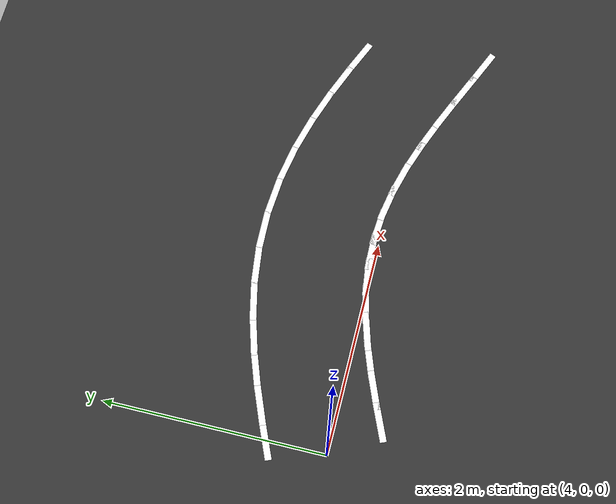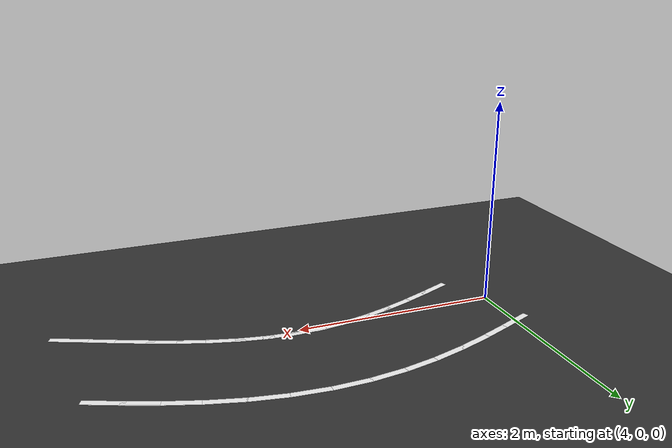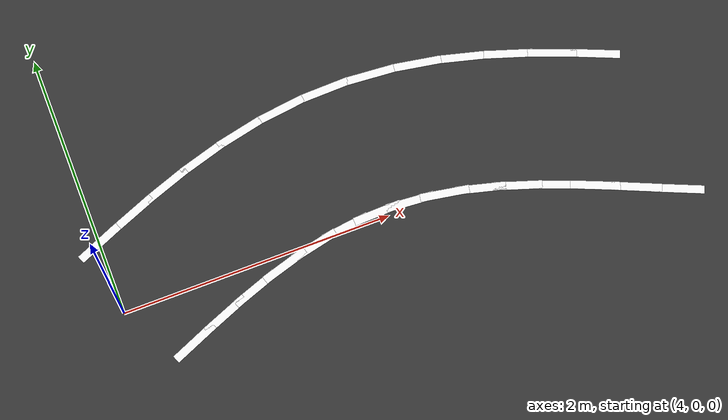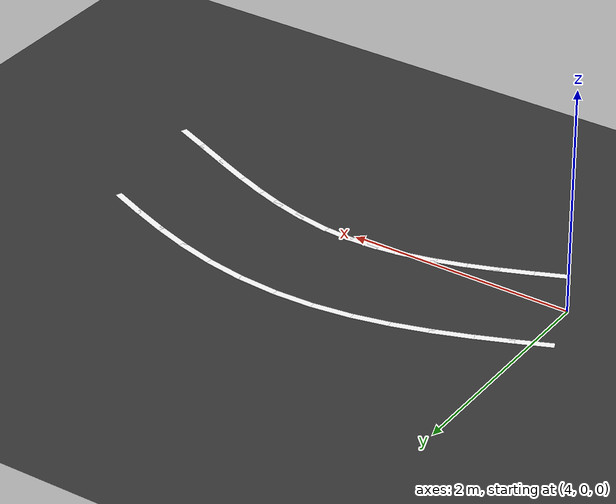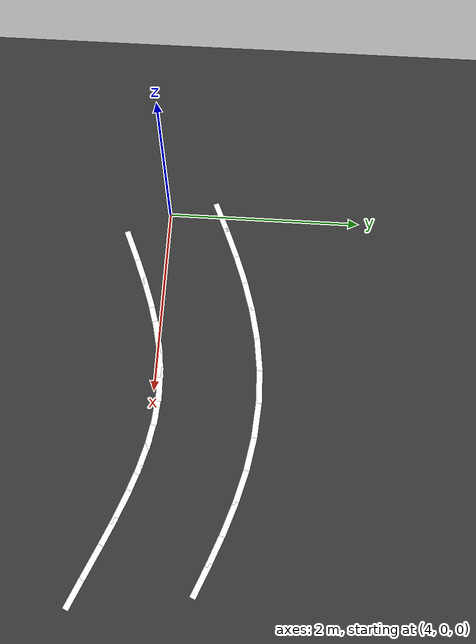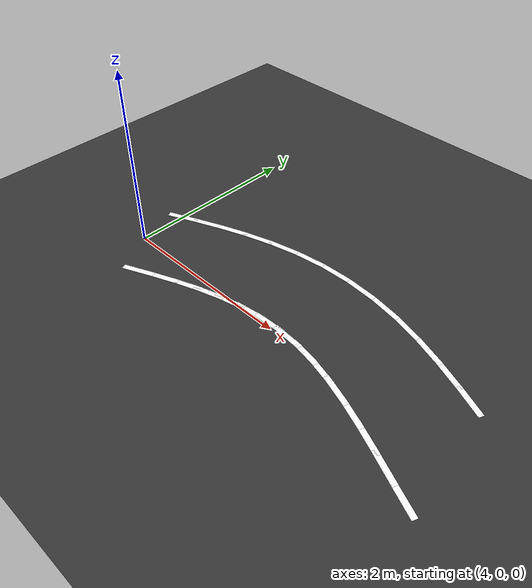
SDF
<sdf version="1.7">
 <world name="cone_lane">
  <model name="ground_plane">
   <static>true</static>
   <link name="link">
    <collision name="collision">
     <geometry><plane><normal>0 0 1</normal><size>150 150</size></plane></geometry>
     <surface><friction><ode><mu>1.0</mu></ode></friction></surface>
    </collision>
    <visual name="visual">
     <geometry><plane><normal>0 0 1</normal><size>100 100</size></plane></geometry>
     <material>
      <ambient>0.16 0.16 0.16 1</ambient>
      <diffuse>0.20 0.20 0.20 1</diffuse>
      <specular>0.02 0.02 0.02 1</specular>
     </material>
    </visual>
   </link>
  </model>
  <model name="line_L015">
   <static>true</static>
   <pose>4.004 0.546 0.0030 0 0 0.4033</pose>
   <link name="link">
    <visual name="v">
     <geometry><box><size>0.360 0.060 0.005</size></box></geometry>
     <material>
      <ambient>0.85 0.85 0.85 1</ambient>
      <diffuse>0.95 0.95 0.95 1</diffuse>
      <specular>0.1 0.1 0.1 1</specular>
     </material>
    </visual>
   </link>
  </model>
  <model name="line_L016">
   <static>true</static>
   <pose>4.294 0.666 0.0030 0 0 0.3819</pose>
   <link name="link">
    <visual name="v">
     <geometry><box><size>0.360 0.060 0.005</size></box></geometry>
     <material>
      <ambient>0.85 0.85 0.85 1</ambient>
      <diffuse>0.95 0.95 0.95 1</diffuse>
      <specular>0.1 0.1 0.1 1</specular>
     </material>
    </visual>
   </link>
  </model>
  <model name="line_L017">
   <static>true</static>
   <pose>4.592 0.780 0.0030 0 0 0.3431</pose>
   <link name="link">
    <visual name="v">
     <geometry><box><size>0.360 0.060 0.005</size></box></geometry>
     <material>
      <ambient>0.85 0.85 0.85 1</ambient>
      <diffuse>0.95 0.95 0.95 1</diffuse>
      <specular>0.1 0.1 0.1 1</specular>
     </material>
    </visual>
   </link>
  </model>
  <model name="line_L018">
   <static>true</static>
   <pose>4.898 0.880 0.0030 0 0 0.2875</pose>
   <link name="link">
    <visual name="v">
     <geometry><box><size>0.360 0.060 0.005</size></box></geometry>
     <material>
      <ambient>0.85 0.85 0.85 1</ambient>
      <diffuse>0.95 0.95 0.95 1</diffuse>
      <specular>0.1 0.1 0.1 1</specular>
     </material>
    </visual>
   </link>
  </model>
  <model name="line_L019">
   <static>true</static>
   <pose>5.213 0.962 0.0030 0 0 0.2164</pose>
   <link name="link">
    <visual name="v">
     <geometry><box><size>0.360 0.060 0.005</size></box></geometry>
     <material>
      <ambient>0.85 0.85 0.85 1</ambient>
      <diffuse>0.95 0.95 0.95 1</diffuse>
      <specular>0.1 0.1 0.1 1</specular>
     </material>
    </visual>
   </link>
  </model>
  <model name="line_L020">
   <static>true</static>
   <pose>5.557 1.022 0.0030 0 0 0.1263</pose>
   <link name="link">
    <visual name="v">
     <geometry><box><size>0.360 0.060 0.005</size></box></geometry>
     <material>
      <ambient>0.85 0.85 0.85 1</ambient>
      <diffuse>0.95 0.95 0.95 1</diffuse>
      <specular>0.1 0.1 0.1 1</specular>
     </material>
    </visual>
   </link>
  </model>
  <model name="line_L021">
   <static>true</static>
   <pose>5.906 1.049 0.0030 0 0 0.0271</pose>
   <link name="link">
    <visual name="v">
     <geometry><box><size>0.360 0.060 0.005</size></box></geometry>
     <material>
      <ambient>0.85 0.85 0.85 1</ambient>
      <diffuse>0.95 0.95 0.95 1</diffuse>
      <specular>0.1 0.1 0.1 1</specular>
     </material>
    </visual>
   </link>
  </model>
  <model name="line_L022">
   <static>true</static>
   <pose>6.257 1.040 0.0030 0 0 -0.0741</pose>
   <link name="link">
    <visual name="v">
     <geometry><box><size>0.360 0.060 0.005</size></box></geometry>
     <material>
      <ambient>0.85 0.85 0.85 1</ambient>
      <diffuse>0.95 0.95 0.95 1</diffuse>
      <specular>0.1 0.1 0.1 1</specular>
     </material>
    </visual>
   </link>
  </model>
  <model name="line_L023">
   <static>true</static>
   <pose>6.605 0.998 0.0030 0 0 -0.1699</pose>
   <link name="link">
    <visual name="v">
     <geometry><box><size>0.360 0.060 0.005</size></box></geometry>
     <material>
      <ambient>0.85 0.85 0.85 1</ambient>
      <diffuse>0.95 0.95 0.95 1</diffuse>
      <specular>0.1 0.1 0.1 1</specular>
     </material>
    </visual>
   </link>
  </model>
  <model name="line_L024">
   <static>true</static>
   <pose>6.946 0.924 0.0030 0 0 -0.2538</pose>
   <link name="link">
    <visual name="v">
     <geometry><box><size>0.360 0.060 0.005</size></box></geometry>
     <material>
      <ambient>0.85 0.85 0.85 1</ambient>
      <diffuse>0.95 0.95 0.95 1</diffuse>
      <specular>0.1 0.1 0.1 1</specular>
     </material>
    </visual>
   </link>
  </model>
  <model name="line_L025">
   <static>true</static>
   <pose>7.256 0.832 0.0030 0 0 -0.3174</pose>
   <link name="link">
    <visual name="v">
     <geometry><box><size>0.360 0.060 0.005</size></box></geometry>
     <material>
      <ambient>0.85 0.85 0.85 1</ambient>
      <diffuse>0.95 0.95 0.95 1</diffuse>
      <specular>0.1 0.1 0.1 1</specular>
     </material>
    </visual>
   </link>
  </model>
  <model name="line_L026">
   <static>true</static>
   <pose>7.558 0.724 0.0030 0 0 -0.3647</pose>
   <link name="link">
    <visual name="v">
     <geometry><box><size>0.360 0.060 0.005</size></box></geometry>
     <material>
      <ambient>0.85 0.85 0.85 1</ambient>
      <diffuse>0.95 0.95 0.95 1</diffuse>
      <specular>0.1 0.1 0.1 1</specular>
     </material>
    </visual>
   </link>
  </model>
  <model name="line_L027">
   <static>true</static>
   <pose>7.852 0.607 0.0030 0 0 -0.3948</pose>
   <link name="link">
    <visual name="v">
     <geometry><box><size>0.360 0.060 0.005</size></box></geometry>
     <material>
      <ambient>0.85 0.85 0.85 1</ambient>
      <diffuse>0.95 0.95 0.95 1</diffuse>
      <specular>0.1 0.1 0.1 1</specular>
     </material>
    </visual>
   </link>
  </model>
  <model name="line_R015">
   <static>true</static>
   <pose>4.396 -0.374 0.0030 0 0 0.4033</pose>
   <link name="link">
    <visual name="v">
     <geometry><box><size>0.360 0.060 0.005</size></box></geometry>
     <material>
      <ambient>0.85 0.85 0.85 1</ambient>
      <diffuse>0.95 0.95 0.95 1</diffuse>
      <specular>0.1 0.1 0.1 1</specular>
     </material>
    </visual>
   </link>
  </model>
  <model name="line_R016">
   <static>true</static>
   <pose>4.666 -0.262 0.0030 0 0 0.3819</pose>
   <link name="link">
    <visual name="v">
     <geometry><box><size>0.360 0.060 0.005</size></box></geometry>
     <material>
      <ambient>0.85 0.85 0.85 1</ambient>
      <diffuse>0.95 0.95 0.95 1</diffuse>
      <specular>0.1 0.1 0.1 1</specular>
     </material>
    </visual>
   </link>
  </model>
  <model name="line_R017">
   <static>true</static>
   <pose>4.928 -0.162 0.0030 0 0 0.3431</pose>
   <link name="link">
    <visual name="v">
     <geometry><box><size>0.360 0.060 0.005</size></box></geometry>
     <material>
      <ambient>0.85 0.85 0.85 1</ambient>
      <diffuse>0.95 0.95 0.95 1</diffuse>
      <specular>0.1 0.1 0.1 1</specular>
     </material>
    </visual>
   </link>
  </model>
  <model name="line_R018">
   <static>true</static>
   <pose>5.182 -0.079 0.0030 0 0 0.2875</pose>
   <link name="link">
    <visual name="v">
     <geometry><box><size>0.360 0.060 0.005</size></box></geometry>
     <material>
      <ambient>0.85 0.85 0.85 1</ambient>
      <diffuse>0.95 0.95 0.95 1</diffuse>
      <specular>0.1 0.1 0.1 1</specular>
     </material>
    </visual>
   </link>
  </model>
  <model name="line_R019">
   <static>true</static>
   <pose>5.427 -0.015 0.0030 0 0 0.2164</pose>
   <link name="link">
    <visual name="v">
     <geometry><box><size>0.360 0.060 0.005</size></box></geometry>
     <material>
      <ambient>0.85 0.85 0.85 1</ambient>
      <diffuse>0.95 0.95 0.95 1</diffuse>
      <specular>0.1 0.1 0.1 1</specular>
     </material>
    </visual>
   </link>
  </model>
  <model name="line_R020">
   <static>true</static>
   <pose>5.683 0.030 0.0030 0 0 0.1263</pose>
   <link name="link">
    <visual name="v">
     <geometry><box><size>0.360 0.060 0.005</size></box></geometry>
     <material>
      <ambient>0.85 0.85 0.85 1</ambient>
      <diffuse>0.95 0.95 0.95 1</diffuse>
      <specular>0.1 0.1 0.1 1</specular>
     </material>
    </visual>
   </link>
  </model>
  <model name="line_R021">
   <static>true</static>
   <pose>5.934 0.049 0.0030 0 0 0.0271</pose>
   <link name="link">
    <visual name="v">
     <geometry><box><size>0.360 0.060 0.005</size></box></geometry>
     <material>
      <ambient>0.85 0.85 0.85 1</ambient>
      <diffuse>0.95 0.95 0.95 1</diffuse>
      <specular>0.1 0.1 0.1 1</specular>
     </material>
    </visual>
   </link>
  </model>
  <model name="line_R022">
   <static>true</static>
   <pose>6.183 0.043 0.0030 0 0 -0.0741</pose>
   <link name="link">
    <visual name="v">
     <geometry><box><size>0.360 0.060 0.005</size></box></geometry>
     <material>
      <ambient>0.85 0.85 0.85 1</ambient>
      <diffuse>0.95 0.95 0.95 1</diffuse>
      <specular>0.1 0.1 0.1 1</specular>
     </material>
    </visual>
   </link>
  </model>
  <model name="line_R023">
   <static>true</static>
   <pose>6.435 0.012 0.0030 0 0 -0.1699</pose>
   <link name="link">
    <visual name="v">
     <geometry><box><size>0.360 0.060 0.005</size></box></geometry>
     <material>
      <ambient>0.85 0.85 0.85 1</ambient>
      <diffuse>0.95 0.95 0.95 1</diffuse>
      <specular>0.1 0.1 0.1 1</specular>
     </material>
    </visual>
   </link>
  </model>
  <model name="line_R024">
   <static>true</static>
   <pose>6.694 -0.044 0.0030 0 0 -0.2538</pose>
   <link name="link">
    <visual name="v">
     <geometry><box><size>0.360 0.060 0.005</size></box></geometry>
     <material>
      <ambient>0.85 0.85 0.85 1</ambient>
      <diffuse>0.95 0.95 0.95 1</diffuse>
      <specular>0.1 0.1 0.1 1</specular>
     </material>
    </visual>
   </link>
  </model>
  <model name="line_R025">
   <static>true</static>
   <pose>6.944 -0.118 0.0030 0 0 -0.3174</pose>
   <link name="link">
    <visual name="v">
     <geometry><box><size>0.360 0.060 0.005</size></box></geometry>
     <material>
      <ambient>0.85 0.85 0.85 1</ambient>
      <diffuse>0.95 0.95 0.95 1</diffuse>
      <specular>0.1 0.1 0.1 1</specular>
     </material>
    </visual>
   </link>
  </model>
  <model name="line_R026">
   <static>true</static>
   <pose>7.202 -0.210 0.0030 0 0 -0.3647</pose>
   <link name="link">
    <visual name="v">
     <geometry><box><size>0.360 0.060 0.005</size></box></geometry>
     <material>
      <ambient>0.85 0.85 0.85 1</ambient>
      <diffuse>0.95 0.95 0.95 1</diffuse>
      <specular>0.1 0.1 0.1 1</specular>
     </material>
    </visual>
   </link>
  </model>
  <model name="line_R027">
   <static>true</static>
   <pose>7.468 -0.316 0.0030 0 0 -0.3948</pose>
   <link name="link">
    <visual name="v">
     <geometry><box><size>0.360 0.060 0.005</size></box></geometry>
     <material>
      <ambient>0.85 0.85 0.85 1</ambient>
      <diffuse>0.95 0.95 0.95 1</diffuse>
      <specular>0.1 0.1 0.1 1</specular>
     </material>
    </visual>
   </link>
  </model>
  <model name="line_R028">
   <static>true</static>
   <pose>7.742 -0.433 0.0030 0 0 -0.4073</pose>
   <link name="link">
    <visual name="v">
     <geometry><box><size>0.360 0.060 0.005</size></box></geometry>
     <material>
      <ambient>0.85 0.85 0.85 1</ambient>
      <diffuse>0.95 0.95 0.95 1</diffuse>
      <specular>0.1 0.1 0.1 1</specular>
     </material>
    </visual>
   </link>
  </model>
  <model name="line_R029">
   <static>true</static>
   <pose>8.024 -0.555 0.0030 0 0 -0.4023</pose>
   <link name="link">
    <visual name="v">
     <geometry><box><size>0.360 0.060 0.005</size></box></geometry>
     <material>
      <ambient>0.85 0.85 0.85 1</ambient>
      <diffuse>0.95 0.95 0.95 1</diffuse>
      <specular>0.1 0.1 0.1 1</specular>
     </material>
    </visual>
   </link>
  </model>
 </world>
</sdf>
